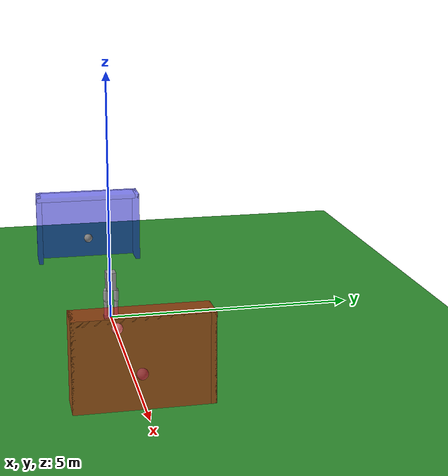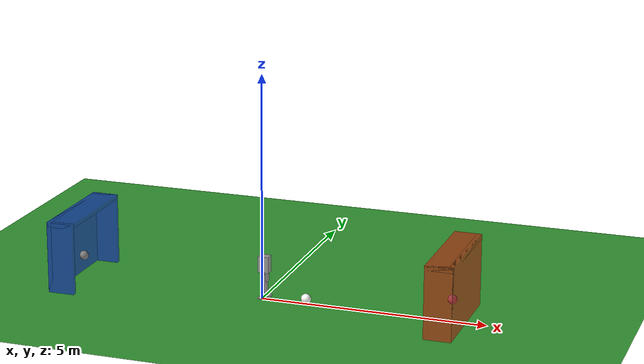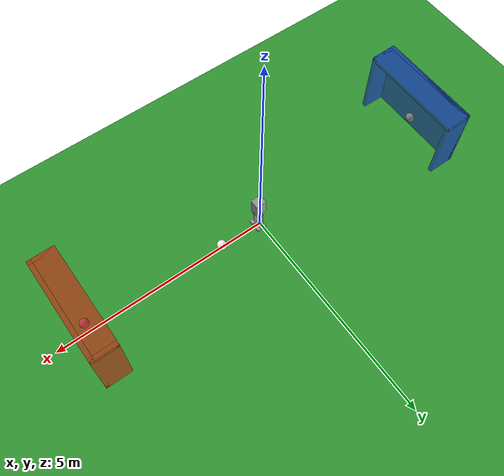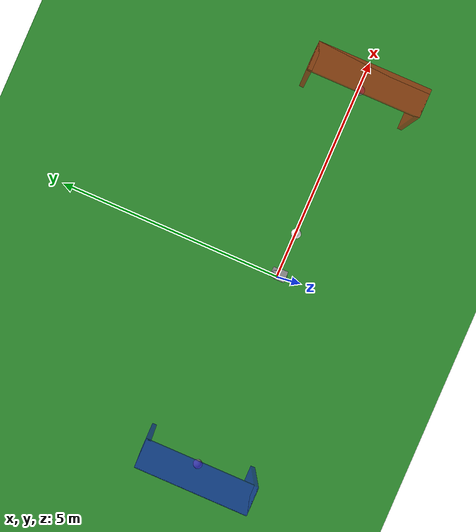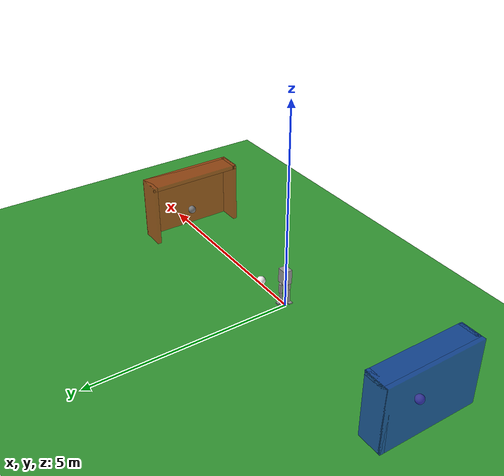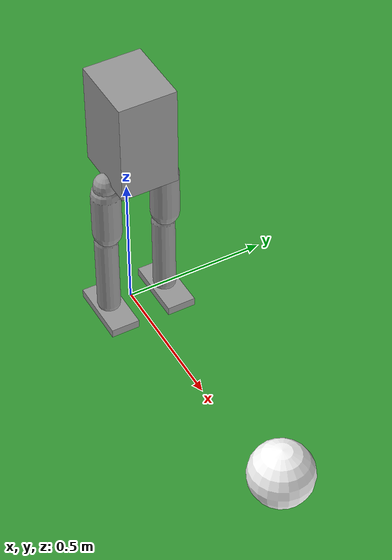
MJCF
<mujoco model="soccer_env">
  <compiler angle="radian" autolimits="true"/>

  <option timestep="0.002" gravity="0 0 -9.81"/>

  <asset>
    <material name="robot_gray" rgba="0.6 0.6 0.6 1"/>
    <material name="ball_white" rgba="1 1 1 1"/>
    <material name="goal_red" rgba="1 0 0 0.5"/>
    <material name="goal_blue" rgba="0 0 1 0.5"/>
    <material name="floor_green" rgba="0.2 0.6 0.2 1"/>
  </asset>

  <default>
    <joint frictionloss="0.1" armature="0.005"/>
    <motor ctrllimited="true"/>
    <geom condim="3" friction="1.0 0.005 0.0001"/>
  </default>

  <worldbody>
    <!-- 地面 -->
    <geom name="floor" type="plane" size="10 7 0.1" material="floor_green"/>
    <light directional="true" diffuse="0.8 0.8 0.8" pos="0 0 5" dir="0 0 -1"/>

    <!-- ========== 機器人（簡化幾何體） ========== -->
    <body name="Trunk" pos="0 0 0.7">
      <site name="imu" size="0.01" pos="0 0 0"/>
      <freejoint name="root"/>
      <inertial pos="0.054 0 0.089" mass="19.4" diaginertia="0.5 0.35 0.21"/>

      <!-- 軀幹 -->
      <geom name="trunk_geom" type="box" size="0.12 0.1 0.18" pos="0.05 0 0.1" material="robot_gray"/>

      <!-- ===== 左腿 ===== -->
      <body name="Hip_Pitch_Left" pos="0.0625 0.106 -0.1155">
        <inertial pos="0.0005 -0.007 -0.018" mass="1.0" diaginertia="0.0018 0.0015 0.0013"/>
        <joint name="Left_Hip_Pitch" axis="0 1 0" range="-1.8 1.57"/>
        <geom type="capsule" size="0.04" fromto="0 0 -0.02 0 0 0.02" material="robot_gray"/>

        <body name="Hip_Roll_Left" pos="0 0 -0.02">
          <inertial pos="0.001 0 -0.054" mass="0.4" diaginertia="0.0017 0.0015 0.0005"/>
          <joint name="Left_Hip_Roll" axis="1 0 0" range="-0.3 1.57"/>
          <geom type="capsule" size="0.035" fromto="0 0 -0.08 0 0 0" material="robot_gray"/>

          <body name="Hip_Yaw_Left" pos="0 0 -0.082">
            <inertial pos="-0.007 0 -0.089" mass="2.2" diaginertia="0.026 0.025 0.003"/>
            <joint name="Left_Hip_Yaw" axis="0 0 1" range="-1 1"/>
            <geom type="capsule" size="0.05" fromto="0 0 -0.08 0 0 0.08" material="robot_gray"/>

            <body name="Shank_Left" pos="-0.014 0 -0.134">
              <inertial pos="-0.006 0 -0.124" mass="1.7" diaginertia="0.035 0.035 0.002"/>
              <joint name="Left_Knee_Pitch" axis="0 1 0" range="0 2.34"/>
              <geom type="capsule" size="0.04" fromto="0 0 0 0 0 -0.28" material="robot_gray"/>

              <body name="Ankle_Cross_Left" pos="0 0 -0.28">
                <inertial pos="-0.004 0 -0.008" mass="0.07" diaginertia="0.00003 0.00003 0.00001"/>
                <joint name="Left_Ankle_Pitch" axis="0 1 0" range="-0.87 0.35"/>

                <body name="left_foot_link" pos="0 0 -0.012">
                  <site name="left_foot" size="0.01"/>
                  <inertial pos="0 0 -0.009" mass="0.7" diaginertia="0.003 0.002 0.002"/>
                  <joint name="Left_Ankle_Roll" axis="1 0 0" range="-0.44 0.44"/>
                  <geom type="box" size="0.11 0.05 0.015" pos="0.01 0 -0.015" material="robot_gray"/>
                </body>
              </body>
            </body>
          </body>
        </body>
      </body>

      <!-- ===== 右腿 ===== -->
      <body name="Hip_Pitch_Right" pos="0.0625 -0.106 -0.1155">
        <inertial pos="0.0005 0.007 -0.018" mass="1.0" diaginertia="0.0018 0.0015 0.0013"/>
        <joint name="Right_Hip_Pitch" axis="0 1 0" range="-1.8 1.57"/>
        <geom type="capsule" size="0.04" fromto="0 0 -0.02 0 0 0.02" material="robot_gray"/>

        <body name="Hip_Roll_Right" pos="0 0 -0.02">
          <inertial pos="0.001 0 -0.054" mass="0.4" diaginertia="0.0017 0.0015 0.0005"/>
          <joint name="Right_Hip_Roll" axis="1 0 0" range="-1.57 0.3"/>
          <geom type="capsule" size="0.035" fromto="0 0 -0.08 0 0 0" material="robot_gray"/>

          <body name="Hip_Yaw_Right" pos="0 0 -0.082">
            <inertial pos="-0.007 0 -0.089" mass="2.2" diaginertia="0.026 0.025 0.003"/>
            <joint name="Right_Hip_Yaw" axis="0 0 1" range="-1 1"/>
            <geom type="capsule" size="0.05" fromto="0 0 -0.08 0 0 0.08" material="robot_gray"/>

            <body name="Shank_Right" pos="-0.014 0 -0.134">
              <inertial pos="-0.006 0 -0.124" mass="1.8" diaginertia="0.035 0.035 0.002"/>
              <joint name="Right_Knee_Pitch" axis="0 1 0" range="0 2.34"/>
              <geom type="capsule" size="0.04" fromto="0 0 0 0 0 -0.28" material="robot_gray"/>

              <body name="Ankle_Cross_Right" pos="0 0 -0.28">
                <inertial pos="-0.004 0 -0.008" mass="0.07" diaginertia="0.00003 0.00003 0.00001"/>
                <joint name="Right_Ankle_Pitch" axis="0 1 0" range="-0.87 0.35"/>

                <body name="right_foot_link" pos="0 0 -0.012">
                  <site name="right_foot" size="0.01"/>
                  <inertial pos="0 0 -0.009" mass="0.7" diaginertia="0.003 0.002 0.002"/>
                  <joint name="Right_Ankle_Roll" axis="1 0 0" range="-0.44 0.44"/>
                  <geom type="box" size="0.11 0.05 0.015" pos="0.01 0 -0.015" material="robot_gray"/>
                </body>
              </body>
            </body>
          </body>
        </body>
      </body>
    </body>

    <!-- ========== 足球 ========== -->
    <body name="ball" pos="1 0 0.11">
      <freejoint name="ball_joint"/>
      <inertial pos="0 0 0" mass="0.45" diaginertia="0.003 0.003 0.003"/>
      <geom name="ball_geom" type="sphere" size="0.11" material="ball_white"/>
    </body>

    <!-- ========== 球門 ========== -->
    <!-- Team 0 球門（正 X 方向） -->
    <body name="goal_team_0" pos="4.5 0 0">
      <geom name="goal_0_back" type="box" size="0.05 1.2 0.8" pos="0 0 0.8" material="goal_red" contype="0" conaffinity="0"/>
      <geom name="goal_0_left" type="box" size="0.3 0.05 0.8" pos="-0.25 1.15 0.8" material="goal_red" contype="0" conaffinity="0"/>
      <geom name="goal_0_right" type="box" size="0.3 0.05 0.8" pos="-0.25 -1.15 0.8" material="goal_red" contype="0" conaffinity="0"/>
      <geom name="goal_0_top" type="box" size="0.3 1.2 0.05" pos="-0.25 0 1.55" material="goal_red" contype="0" conaffinity="0"/>
      <site name="goal_0_center" pos="-0.25 0 0.5" size="0.1"/>
    </body>

    <!-- Team 1 球門（負 X 方向） -->
    <body name="goal_team_1" pos="-4.5 0 0">
      <geom name="goal_1_back" type="box" size="0.05 1.2 0.8" pos="0 0 0.8" material="goal_blue" contype="0" conaffinity="0"/>
      <geom name="goal_1_left" type="box" size="0.3 0.05 0.8" pos="0.25 1.15 0.8" material="goal_blue" contype="0" conaffinity="0"/>
      <geom name="goal_1_right" type="box" size="0.3 0.05 0.8" pos="0.25 -1.15 0.8" material="goal_blue" contype="0" conaffinity="0"/>
      <geom name="goal_1_top" type="box" size="0.3 1.2 0.05" pos="0.25 0 1.55" material="goal_blue" contype="0" conaffinity="0"/>
      <site name="goal_1_center" pos="0.25 0 0.5" size="0.1"/>
    </body>

    <!-- ========== 門將佔位（可選，訓練時可啟用） ========== -->
  </worldbody>

  <!-- ========== Actuators（12 DOF，與官方一致）========== -->
  <actuator>
    <motor name="Left_Hip_Pitch" joint="Left_Hip_Pitch" ctrlrange="-45.0 45.0"/>
    <motor name="Left_Hip_Roll" joint="Left_Hip_Roll" ctrlrange="-45.0 45.0"/>
    <motor name="Left_Hip_Yaw" joint="Left_Hip_Yaw" ctrlrange="-30.0 30.0"/>
    <motor name="Left_Knee_Pitch" joint="Left_Knee_Pitch" ctrlrange="-65.0 65.0"/>
    <motor name="Left_Ankle_Pitch" joint="Left_Ankle_Pitch" ctrlrange="-24.0 24.0"/>
    <motor name="Left_Ankle_Roll" joint="Left_Ankle_Roll" ctrlrange="-15.0 15.0"/>
    <motor name="Right_Hip_Pitch" joint="Right_Hip_Pitch" ctrlrange="-45.0 45.0"/>
    <motor name="Right_Hip_Roll" joint="Right_Hip_Roll" ctrlrange="-45.0 45.0"/>
    <motor name="Right_Hip_Yaw" joint="Right_Hip_Yaw" ctrlrange="-30.0 30.0"/>
    <motor name="Right_Knee_Pitch" joint="Right_Knee_Pitch" ctrlrange="-65.0 65.0"/>
    <motor name="Right_Ankle_Pitch" joint="Right_Ankle_Pitch" ctrlrange="-24.0 24.0"/>
    <motor name="Right_Ankle_Roll" joint="Right_Ankle_Roll" ctrlrange="-15.0 15.0"/>
  </actuator>

  <!-- ========== Sensors ========== -->
  <sensor>
    <gyro name="torso_gyro" site="imu"/>
    <velocimeter name="torso_vel" site="imu"/>
    <accelerometer name="accelerometer" site="imu"/>
    <framequat name="torso_quat" objtype="site" objname="imu"/>
    <framepos name="torso_pos" objtype="site" objname="imu"/>
    <framelinvel name="torso_linvel" objtype="site" objname="imu"/>
  </sensor>
</mujoco>
